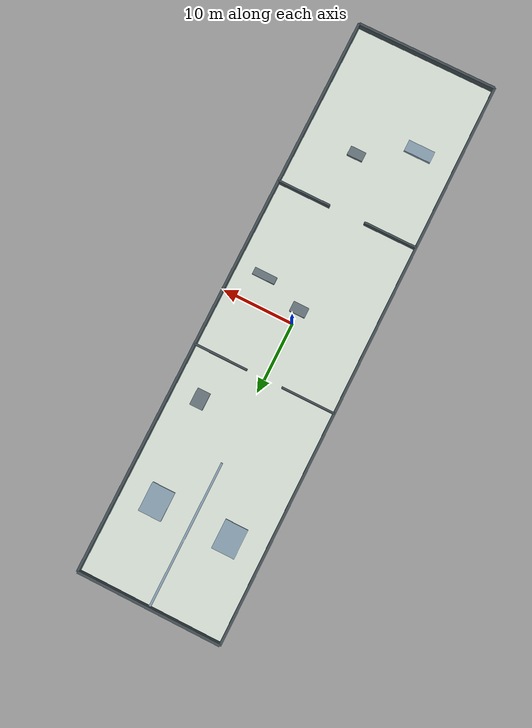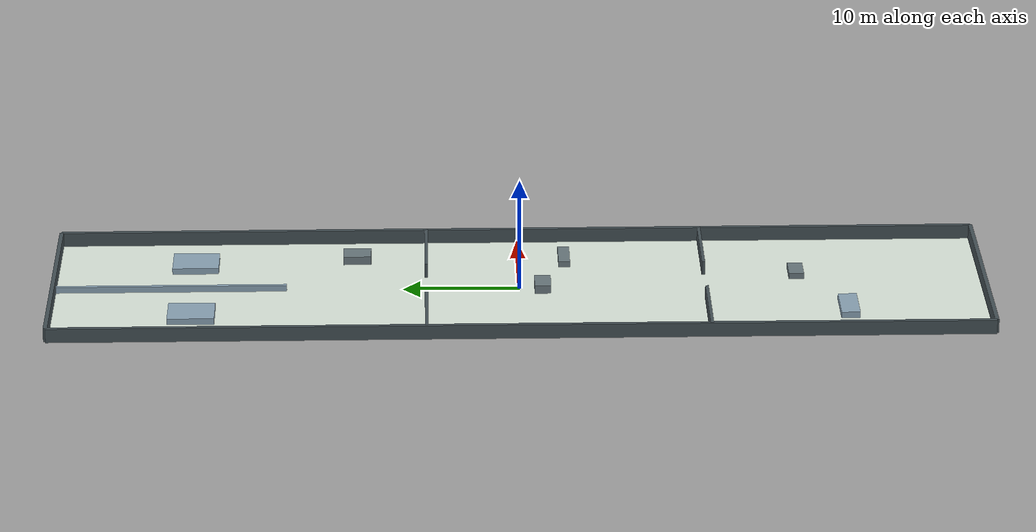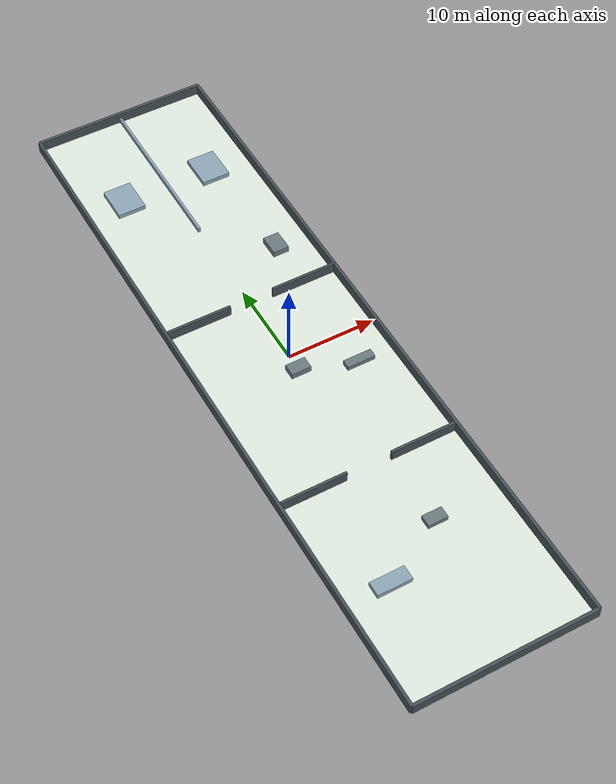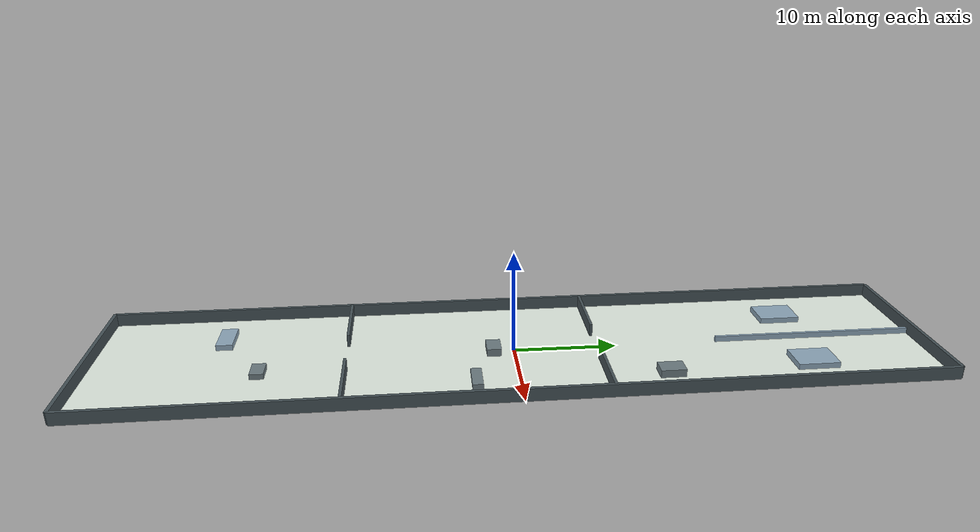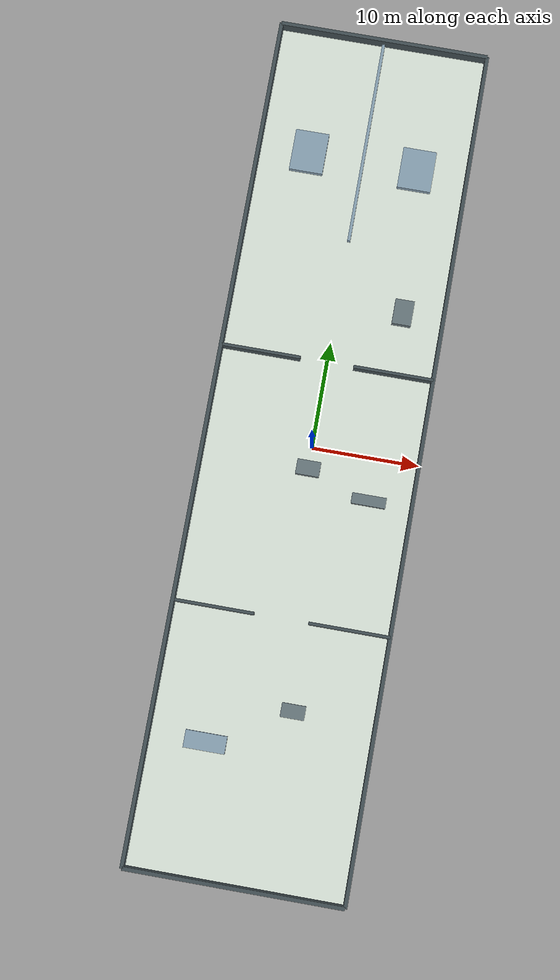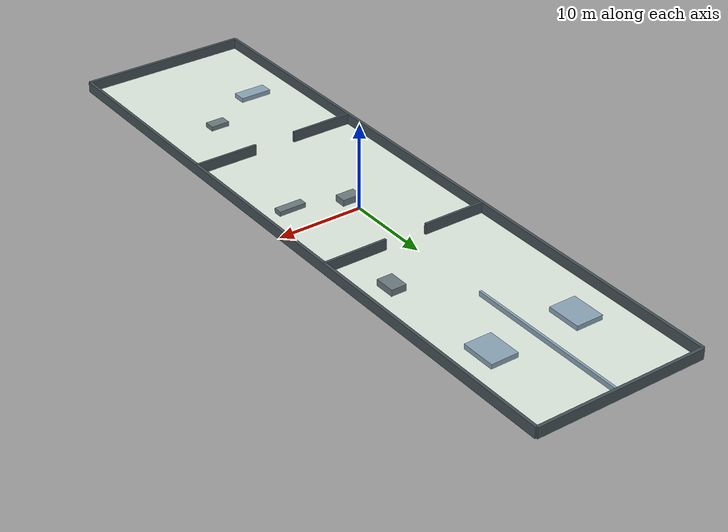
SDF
<?xml version="1.0" ?>
<sdf version="1.6">
  <world name="townhouse_long">
    <gravity>0 0 -9.8</gravity>
    <scene>
      <ambient>0.65 0.65 0.65 1</ambient>
      <background>0.78 0.84 0.88 1</background>
    </scene>
    <include>
      <uri>model://sun</uri>
    </include>
    <model name="townhouse_long_floor">
      <static>true</static>
      <pose>0.000 0.000 -0.025 0 0 0</pose>
      <link name="floor_link">
        <collision name="floor_collision">
          <geometry>
            <box><size>20.000 80.000 0.050</size></box>
          </geometry>
        </collision>
        <visual name="floor_visual">
          <geometry>
            <box><size>20.000 80.000 0.050</size></box>
          </geometry>
          <material><ambient>0.88 0.92 0.88 1</ambient><diffuse>0.88 0.92 0.88 1</diffuse></material>
        </visual>
      </link>
    </model>
    <model name="outer_north">
      <static>true</static>
      <pose>0.000 40.000 0.625 0 0 0</pose>
      <link name="outer_north_link">
        <collision name="outer_north_collision">
          <geometry>
            <box><size>20.000 0.350 1.250</size></box>
          </geometry>
        </collision>
        <visual name="outer_north_visual">
          <geometry>
            <box><size>20.000 0.350 1.250</size></box>
          </geometry>
          <material><ambient>0.27 0.32 0.34 1</ambient><diffuse>0.27 0.32 0.34 1</diffuse></material>
        </visual>
      </link>
    </model>
    <model name="outer_south">
      <static>true</static>
      <pose>0.000 -40.000 0.625 0 0 0</pose>
      <link name="outer_south_link">
        <collision name="outer_south_collision">
          <geometry>
            <box><size>20.000 0.350 1.250</size></box>
          </geometry>
        </collision>
        <visual name="outer_south_visual">
          <geometry>
            <box><size>20.000 0.350 1.250</size></box>
          </geometry>
          <material><ambient>0.27 0.32 0.34 1</ambient><diffuse>0.27 0.32 0.34 1</diffuse></material>
        </visual>
      </link>
    </model>
    <model name="outer_west">
      <static>true</static>
      <pose>-10.000 0.000 0.625 0 0 0</pose>
      <link name="outer_west_link">
        <collision name="outer_west_collision">
          <geometry>
            <box><size>0.350 80.000 1.250</size></box>
          </geometry>
        </collision>
        <visual name="outer_west_visual">
          <geometry>
            <box><size>0.350 80.000 1.250</size></box>
          </geometry>
          <material><ambient>0.27 0.32 0.34 1</ambient><diffuse>0.27 0.32 0.34 1</diffuse></material>
        </visual>
      </link>
    </model>
    <model name="outer_east">
      <static>true</static>
      <pose>10.000 0.000 0.625 0 0 0</pose>
      <link name="outer_east_link">
        <collision name="outer_east_collision">
          <geometry>
            <box><size>0.350 80.000 1.250</size></box>
          </geometry>
        </collision>
        <visual name="outer_east_visual">
          <geometry>
            <box><size>0.350 80.000 1.250</size></box>
          </geometry>
          <material><ambient>0.27 0.32 0.34 1</ambient><diffuse>0.27 0.32 0.34 1</diffuse></material>
        </visual>
      </link>
    </model>
    <model name="town_living_kitchen_wall_w">
      <static>true</static>
      <pose>-6.250 -16.000 0.625 0 0 0</pose>
      <link name="town_living_kitchen_wall_w_link">
        <collision name="town_living_kitchen_wall_w_collision">
          <geometry>
            <box><size>7.500 0.280 1.250</size></box>
          </geometry>
        </collision>
        <visual name="town_living_kitchen_wall_w_visual">
          <geometry>
            <box><size>7.500 0.280 1.250</size></box>
          </geometry>
          <material><ambient>0.27 0.32 0.34 1</ambient><diffuse>0.27 0.32 0.34 1</diffuse></material>
        </visual>
      </link>
    </model>
    <model name="town_living_kitchen_wall_e">
      <static>true</static>
      <pose>6.250 -16.000 0.625 0 0 0</pose>
      <link name="town_living_kitchen_wall_e_link">
        <collision name="town_living_kitchen_wall_e_collision">
          <geometry>
            <box><size>7.500 0.280 1.250</size></box>
          </geometry>
        </collision>
        <visual name="town_living_kitchen_wall_e_visual">
          <geometry>
            <box><size>7.500 0.280 1.250</size></box>
          </geometry>
          <material><ambient>0.27 0.32 0.34 1</ambient><diffuse>0.27 0.32 0.34 1</diffuse></material>
        </visual>
      </link>
    </model>
    <model name="town_kitchen_private_wall_w">
      <static>true</static>
      <pose>-6.250 8.000 0.625 0 0 0</pose>
      <link name="town_kitchen_private_wall_w_link">
        <collision name="town_kitchen_private_wall_w_collision">
          <geometry>
            <box><size>7.500 0.280 1.250</size></box>
          </geometry>
        </collision>
        <visual name="town_kitchen_private_wall_w_visual">
          <geometry>
            <box><size>7.500 0.280 1.250</size></box>
          </geometry>
          <material><ambient>0.27 0.32 0.34 1</ambient><diffuse>0.27 0.32 0.34 1</diffuse></material>
        </visual>
      </link>
    </model>
    <model name="town_kitchen_private_wall_e">
      <static>true</static>
      <pose>6.250 8.000 0.625 0 0 0</pose>
      <link name="town_kitchen_private_wall_e_link">
        <collision name="town_kitchen_private_wall_e_collision">
          <geometry>
            <box><size>7.500 0.280 1.250</size></box>
          </geometry>
        </collision>
        <visual name="town_kitchen_private_wall_e_visual">
          <geometry>
            <box><size>7.500 0.280 1.250</size></box>
          </geometry>
          <material><ambient>0.27 0.32 0.34 1</ambient><diffuse>0.27 0.32 0.34 1</diffuse></material>
        </visual>
      </link>
    </model>
    <model name="town_bedroom_split">
      <static>true</static>
      <pose>0.000 30.000 0.275 0 0 0</pose>
      <link name="town_bedroom_split_link">
        <collision name="town_bedroom_split_collision">
          <geometry>
            <box><size>0.280 20.000 0.550</size></box>
          </geometry>
        </collision>
        <visual name="town_bedroom_split_visual">
          <geometry>
            <box><size>0.280 20.000 0.550</size></box>
          </geometry>
          <material><ambient>0.55 0.65 0.72 1</ambient><diffuse>0.55 0.65 0.72 1</diffuse></material>
        </visual>
      </link>
    </model>
    <model name="town_sofa">
      <static>true</static>
      <pose>-4.800 -28.000 0.275 0 0 0</pose>
      <link name="town_sofa_link">
        <collision name="town_sofa_collision">
          <geometry>
            <box><size>3.800 1.600 0.550</size></box>
          </geometry>
        </collision>
        <visual name="town_sofa_visual">
          <geometry>
            <box><size>3.800 1.600 0.550</size></box>
          </geometry>
          <material><ambient>0.55 0.65 0.72 1</ambient><diffuse>0.55 0.65 0.72 1</diffuse></material>
        </visual>
      </link>
    </model>
    <model name="town_table">
      <static>true</static>
      <pose>2.500 -24.000 0.275 0 0 0</pose>
      <link name="town_table_link">
        <collision name="town_table_collision">
          <geometry>
            <box><size>2.200 1.300 0.550</size></box>
          </geometry>
        </collision>
        <visual name="town_table_visual">
          <geometry>
            <box><size>2.200 1.300 0.550</size></box>
          </geometry>
          <material><ambient>0.42 0.48 0.50 1</ambient><diffuse>0.42 0.48 0.50 1</diffuse></material>
        </visual>
      </link>
    </model>
    <model name="town_counter">
      <static>true</static>
      <pose>6.000 -4.000 0.275 0 0 0</pose>
      <link name="town_counter_link">
        <collision name="town_counter_collision">
          <geometry>
            <box><size>3.200 1.000 0.550</size></box>
          </geometry>
        </collision>
        <visual name="town_counter_visual">
          <geometry>
            <box><size>3.200 1.000 0.550</size></box>
          </geometry>
          <material><ambient>0.42 0.48 0.50 1</ambient><diffuse>0.42 0.48 0.50 1</diffuse></material>
        </visual>
      </link>
    </model>
    <model name="town_island">
      <static>true</static>
      <pose>0.000 -2.000 0.375 0 0 0</pose>
      <link name="town_island_link">
        <collision name="town_island_collision">
          <geometry>
            <box><size>2.200 1.400 0.750</size></box>
          </geometry>
        </collision>
        <visual name="town_island_visual">
          <geometry>
            <box><size>2.200 1.400 0.750</size></box>
          </geometry>
          <material><ambient>0.42 0.48 0.50 1</ambient><diffuse>0.42 0.48 0.50 1</diffuse></material>
        </visual>
      </link>
    </model>
    <model name="town_bed_left">
      <static>true</static>
      <pose>-5.200 28.000 0.275 0 0 0</pose>
      <link name="town_bed_left_link">
        <collision name="town_bed_left_collision">
          <geometry>
            <box><size>3.200 4.000 0.550</size></box>
          </geometry>
        </collision>
        <visual name="town_bed_left_visual">
          <geometry>
            <box><size>3.200 4.000 0.550</size></box>
          </geometry>
          <material><ambient>0.55 0.65 0.72 1</ambient><diffuse>0.55 0.65 0.72 1</diffuse></material>
        </visual>
      </link>
    </model>
    <model name="town_bed_right">
      <static>true</static>
      <pose>5.200 28.000 0.275 0 0 0</pose>
      <link name="town_bed_right_link">
        <collision name="town_bed_right_collision">
          <geometry>
            <box><size>3.200 4.000 0.550</size></box>
          </geometry>
        </collision>
        <visual name="town_bed_right_visual">
          <geometry>
            <box><size>3.200 4.000 0.550</size></box>
          </geometry>
          <material><ambient>0.55 0.65 0.72 1</ambient><diffuse>0.55 0.65 0.72 1</diffuse></material>
        </visual>
      </link>
    </model>
    <model name="town_bath_fixture">
      <static>true</static>
      <pose>6.200 14.000 0.375 0 0 0</pose>
      <link name="town_bath_fixture_link">
        <collision name="town_bath_fixture_collision">
          <geometry>
            <box><size>1.800 2.400 0.750</size></box>
          </geometry>
        </collision>
        <visual name="town_bath_fixture_visual">
          <geometry>
            <box><size>1.800 2.400 0.750</size></box>
          </geometry>
          <material><ambient>0.42 0.48 0.50 1</ambient><diffuse>0.42 0.48 0.50 1</diffuse></material>
        </visual>
      </link>
    </model>
  </world>
</sdf>
